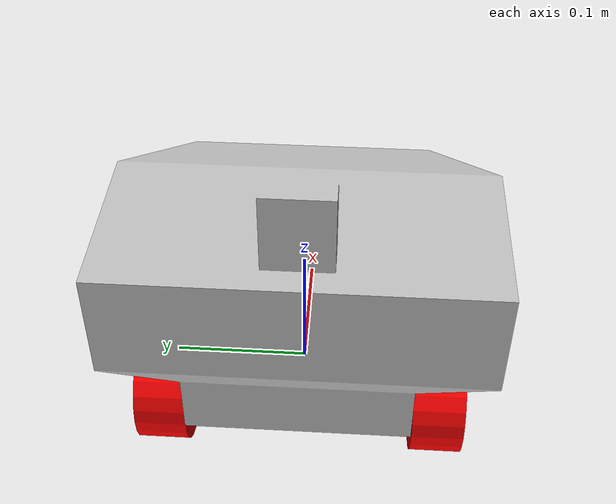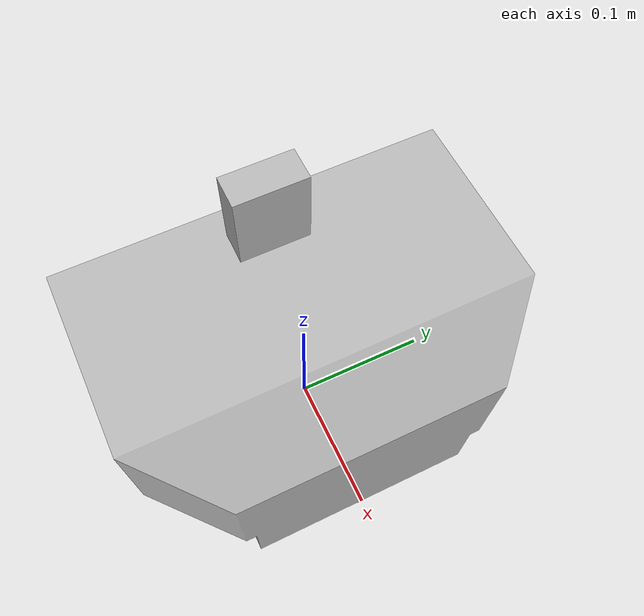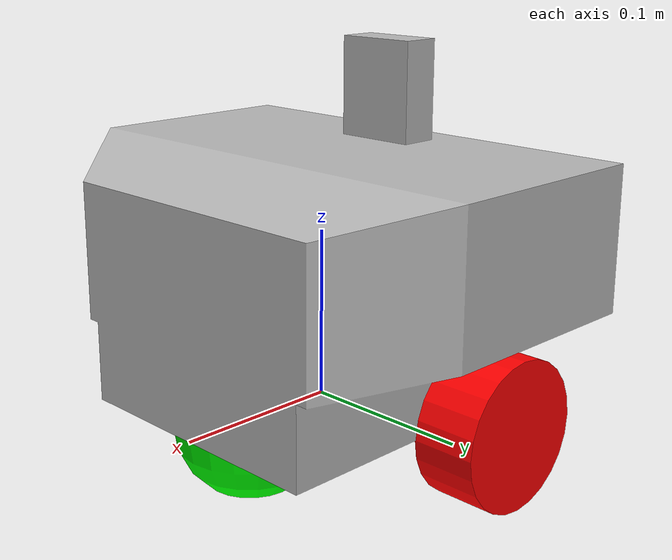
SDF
<?xml version="1.0"?>
<sdf version="1.4">
  <model name="Car">

    <plugin name="diff_drive" filename="libgazebo_ros_diff_drive.so">
      <left_joint>left_wheel_joint</left_joint>
      <right_joint>right_wheel_joint</right_joint>
      <wheel_separation>0.203764</wheel_separation>
      <wheel_diameter>0.088</wheel_diameter>
      <command_topic>cmd_vel</command_topic>
      <publish_odom>true</publish_odom>
      <publish_odom_tf>true</publish_odom_tf>
      <publish_wheel_tf>false</publish_wheel_tf>
      <odometry_topic>odom</odometry_topic>
    </plugin>

    <link name="chassis">
      <pose>0 0 0 0 0 0</pose>

      <inertial>
        <mass>10</mass>
        <inertia>
          <ixx>0.0044258667</ixx>
          <ixy>0</ixy>
          <ixz>0</ixz>
          <iyy>0.004098579</iyy>
          <iyz>0</iyz>
          <izz>0.00490690499</izz>
        </inertia>
      </inertial>

      <visual name="visual">
        <geometry>
          <mesh>
            <uri>model://car/meshes/car_min.dae</uri>
          </mesh>
        </geometry>
      </visual>

      <collision name="collision">
        <geometry>
          <mesh>
            <uri>model://car/meshes/car_min.dae</uri>
          </mesh>
        </geometry>
      </collision>

    </link>

    <link name="left_wheel">
      <pose relative_to="chassis">-0.033182 0.101882 0 1.570796 0 0</pose>

      <inertial>
        <mass>5</mass>
        <inertia>
          <ixx>0.000604333</ixx>
          <ixy>0</ixy>
          <ixz>0</ixz>
          <iyy>0.000604333</iyy>
          <iyz>0</iyz>
          <izz>0.000968</izz>
        </inertia>
      </inertial>

      <visual name='visual'>
        <geometry>
          <cylinder>
            <radius>0.044</radius>
            <length>0.038</length>
          </cylinder>
        </geometry>
        <material>
          <ambient>1.0 0.0 0.0 1</ambient>
          <diffuse>1.0 0.0 0.0 1</diffuse>
          <specular>1.0 0.0 0.0 1</specular>
        </material>
      </visual>
      <collision name='collision'>
        <geometry>
          <cylinder>
            <radius>0.044</radius>
            <length>0.038</length>
          </cylinder>
        </geometry>
      </collision>

    </link>

    <link name="right_wheel">
      <pose relative_to="chassis">-0.033182 -0.101882 0 1.57079633 0 0</pose>

      <inertial>
        <mass>5</mass>
        <inertia>
          <ixx>0.000968</ixx>
          <ixy>0</ixy>
          <ixz>0</ixz>
          <iyy>0.000604333</iyy>
          <iyz>0</iyz>
          <izz>0.000604333</izz>
        </inertia>
      </inertial>

      <visual name='visual'>
        <geometry>
          <cylinder>
            <radius>0.044</radius>
            <length>0.038</length>
          </cylinder>
        </geometry>
        <material>
          <ambient>1.0 0.0 0.0 1</ambient>
          <diffuse>1.0 0.0 0.0 1</diffuse>
          <specular>1.0 0.0 0.0 1</specular>
        </material>
      </visual>
      <collision name='collision'>
        <geometry>
          <cylinder>
            <radius>0.044</radius>
            <length>0.038</length>
          </cylinder>
        </geometry>
      </collision>

    </link>

    <joint name='left_wheel_joint' type='revolute'>
      <pose relative_to='left_wheel' />
      <parent>chassis</parent>
      <child>left_wheel</child>
      <axis>
        <xyz expressed_in='__model__'>0 1 0</xyz> <!--can
        be descired to any frame or even arbitrary frames-->
        <limit>
          <lower>-1.79769e+308</lower>    <!--negative
          infinity-->
          <upper>1.79769e+308</upper>     <!--positive
          infinity-->
        </limit>
      </axis>
    </joint>

    <!--right
    wheel joint-->
    <joint name='right_wheel_joint' type='revolute'>
      <pose relative_to='right_wheel' />
      <parent>chassis</parent>
      <child>right_wheel</child>
      <axis>
        <xyz expressed_in='__model__'>0 1 0</xyz>
        <limit>
          <lower>-1.79769e+308</lower>    <!--negative
          infinity-->
          <upper>1.79769e+308</upper>     <!--positive
          infinity-->
        </limit>
      </axis>
    </joint>

    <frame name="caster_frame" attached_to='chassis'>
      <pose>0.055808 0 0 0 0 0</pose>
    </frame>

    <link name='caster'>
      <pose relative_to='caster_frame' />
      <inertial>
        <mass>10</mass>
        <inertia>
          <ixx>0.0007744</ixx>
          <ixy>0</ixy>
          <ixz>0</ixz>
          <iyy>0.0007744</iyy>
          <iyz>0</iyz>
          <izz>0.0007744</izz>
        </inertia>
      </inertial>
      <visual name='visual'>
        <geometry>
          <sphere>
            <radius>0.044</radius>
          </sphere>
        </geometry>
        <material>
          <ambient>0.0 1 0.0 1</ambient>
          <diffuse>0.0 1 0.0 1</diffuse>
          <specular>0.0 1 0.0 1</specular>
        </material>
      </visual>
      <collision name='collision'>
        <geometry>
          <sphere>
            <radius>0.044</radius>
          </sphere>
        </geometry>
      </collision>
    </link>

    <joint name='caster_wheel' type='ball'>
      <parent>chassis</parent>
      <child>caster</child>
    </joint>

    <link name="camera_link">
      <pose relative_to="chassis">0.1 0 0.1 0 0 0</pose>
      <inertial>
        <mass>0.1</mass>
        <inertia>
          <ixx>0.000166667</ixx>
          <iyy>0.000166667</iyy>
          <izz>0.000166667</izz>
        </inertia>
      </inertial>
      <collision name="collision">
        <geometry>
          <box>
            <size>0.1 0.1 0.1</size>
          </box>
        </geometry>
      </collision>

      <sensor name="camera" type="camera">
        <camera>
          <horizontal_fov>1.0855947947</horizontal_fov>
          <image>
            <width>1640</width>
            <height>1242</height>
          </image>
          <clip>
            <near>0.1</near>
            <far>100</far>
          </clip>
        </camera>
        <plugin name="camera_controller" filename="libgazebo_ros_camera.so">
          <always_on>1</always_on>
          <update_rate>30</update_rate>
          <cameraName>/Car/camera</cameraName>
          <imageTopicName>image_raw</imageTopicName>
          <cameraInfoTopicName>camera_info</cameraInfoTopicName>
          <frameName>camera</frameName>
        </plugin>

      </sensor>
    </link>

    <joint name='camera_joint' type='fixed'>
      <pose relative_to='camera_link' />
      <parent>chassis</parent>
      <child>camera_link</child>
    </joint>

  </model>
</sdf>
